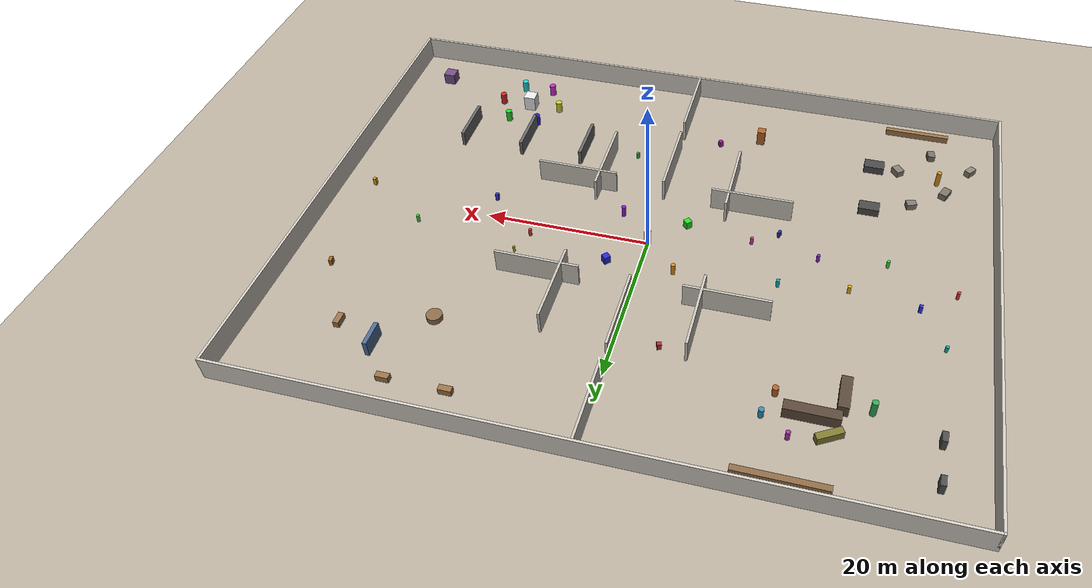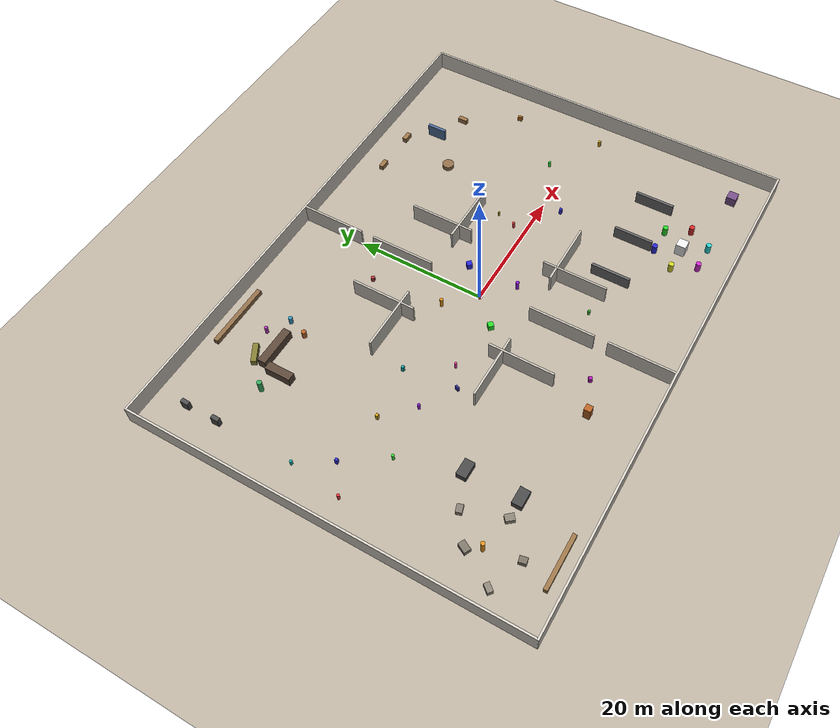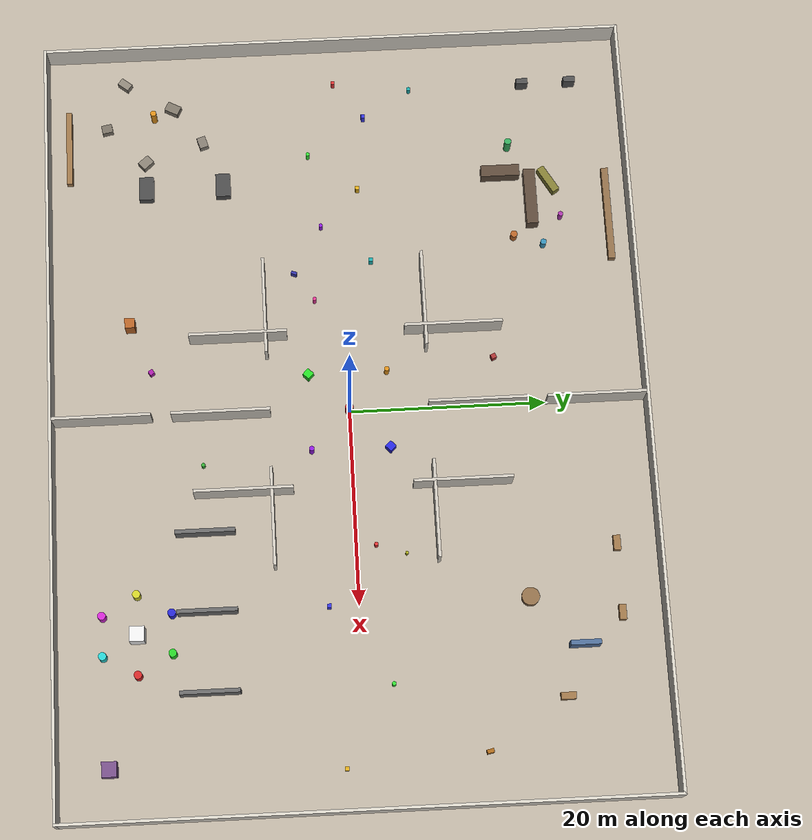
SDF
<sdf version="1.6">
 <world name="building_v2">
  <model name="ground_plane">
   <static>true</static>
   <link name="link">
    <collision name="collision">
     <geometry><plane><normal>0 0 1</normal><size>200 200</size></plane></geometry>
     <surface><friction><ode><mu>1</mu><mu2>1</mu2></ode></friction></surface>
    </collision>
    <visual name="visual">
     <geometry><plane><normal>0 0 1</normal><size>200 200</size></plane></geometry>
     <material><ambient>0.72 0.68 0.62 1</ambient><diffuse>0.72 0.68 0.62 1</diffuse></material>
    </visual>
   </link>
  </model>
  <model name="wall_north">
   <static>true</static>
   <pose>0 30.15 1.5 0 0 0</pose>
   <link name="l">
    <collision name="c"><geometry><box><size>80.6 0.3 3</size></box></geometry></collision>
    <visual name="v">
     <geometry><box><size>80.6 0.3 3</size></box></geometry>
     <material><ambient>0.82 0.80 0.76 1</ambient><diffuse>0.82 0.80 0.76 1</diffuse></material>
    </visual>
   </link>
  </model>
  <model name="wall_south">
   <static>true</static>
   <pose>0 -30.15 1.5 0 0 0</pose>
   <link name="l">
    <collision name="c"><geometry><box><size>80.6 0.3 3</size></box></geometry></collision>
    <visual name="v">
     <geometry><box><size>80.6 0.3 3</size></box></geometry>
     <material><ambient>0.82 0.80 0.76 1</ambient><diffuse>0.82 0.80 0.76 1</diffuse></material>
    </visual>
   </link>
  </model>
  <model name="wall_west">
   <static>true</static>
   <pose>-40.15 0 1.5 0 0 0</pose>
   <link name="l">
    <collision name="c"><geometry><box><size>0.3 60.6 3</size></box></geometry></collision>
    <visual name="v">
     <geometry><box><size>0.3 60.6 3</size></box></geometry>
     <material><ambient>0.82 0.80 0.76 1</ambient><diffuse>0.82 0.80 0.76 1</diffuse></material>
    </visual>
   </link>
  </model>
  <model name="wall_east">
   <static>true</static>
   <pose>40.15 0 1.5 0 0 0</pose>
   <link name="l">
    <collision name="c"><geometry><box><size>0.3 60.6 3</size></box></geometry></collision>
    <visual name="v">
     <geometry><box><size>0.3 60.6 3</size></box></geometry>
     <material><ambient>0.82 0.80 0.76 1</ambient><diffuse>0.82 0.80 0.76 1</diffuse></material>
    </visual>
   </link>
  </model>
  <model name="hub_N_west">
   <static>true</static>
   <pose>-11 8.15 1.5 0 0 0</pose>
   <link name="l">
    <collision name="c"><geometry><box><size>10 0.3 3</size></box></geometry></collision>
    <visual name="v">
     <geometry><box><size>10 0.3 3</size></box></geometry>
     <material><ambient>0.78 0.76 0.72 1</ambient><diffuse>0.78 0.76 0.72 1</diffuse></material>
    </visual>
   </link>
  </model>
  <model name="hub_N_east">
   <static>true</static>
   <pose>11 8.15 1.5 0 0 0</pose>
   <link name="l">
    <collision name="c"><geometry><box><size>10 0.3 3</size></box></geometry></collision>
    <visual name="v">
     <geometry><box><size>10 0.3 3</size></box></geometry>
     <material><ambient>0.78 0.76 0.72 1</ambient><diffuse>0.78 0.76 0.72 1</diffuse></material>
    </visual>
   </link>
  </model>
  <model name="hub_S_west">
   <static>true</static>
   <pose>-11 -8.15 1.5 0 0 0</pose>
   <link name="l">
    <collision name="c"><geometry><box><size>10 0.3 3</size></box></geometry></collision>
    <visual name="v">
     <geometry><box><size>10 0.3 3</size></box></geometry>
     <material><ambient>0.78 0.76 0.72 1</ambient><diffuse>0.78 0.76 0.72 1</diffuse></material>
    </visual>
   </link>
  </model>
  <model name="hub_S_east">
   <static>true</static>
   <pose>11 -8.15 1.5 0 0 0</pose>
   <link name="l">
    <collision name="c"><geometry><box><size>10 0.3 3</size></box></geometry></collision>
    <visual name="v">
     <geometry><box><size>10 0.3 3</size></box></geometry>
     <material><ambient>0.78 0.76 0.72 1</ambient><diffuse>0.78 0.76 0.72 1</diffuse></material>
    </visual>
   </link>
  </model>
  <model name="hub_W_north">
   <static>true</static>
   <pose>-8.15 11 1.5 0 0 0</pose>
   <link name="l">
    <collision name="c"><geometry><box><size>0.3 10 3</size></box></geometry></collision>
    <visual name="v">
     <geometry><box><size>0.3 10 3</size></box></geometry>
     <material><ambient>0.78 0.76 0.72 1</ambient><diffuse>0.78 0.76 0.72 1</diffuse></material>
    </visual>
   </link>
  </model>
  <model name="hub_W_south">
   <static>true</static>
   <pose>-8.15 -11 1.5 0 0 0</pose>
   <link name="l">
    <collision name="c"><geometry><box><size>0.3 10 3</size></box></geometry></collision>
    <visual name="v">
     <geometry><box><size>0.3 10 3</size></box></geometry>
     <material><ambient>0.78 0.76 0.72 1</ambient><diffuse>0.78 0.76 0.72 1</diffuse></material>
    </visual>
   </link>
  </model>
  <model name="hub_E_north">
   <static>true</static>
   <pose>8.15 11 1.5 0 0 0</pose>
   <link name="l">
    <collision name="c"><geometry><box><size>0.3 10 3</size></box></geometry></collision>
    <visual name="v">
     <geometry><box><size>0.3 10 3</size></box></geometry>
     <material><ambient>0.78 0.76 0.72 1</ambient><diffuse>0.78 0.76 0.72 1</diffuse></material>
    </visual>
   </link>
  </model>
  <model name="hub_E_south">
   <static>true</static>
   <pose>8.15 -11 1.5 0 0 0</pose>
   <link name="l">
    <collision name="c"><geometry><box><size>0.3 10 3</size></box></geometry></collision>
    <visual name="v">
     <geometry><box><size>0.3 10 3</size></box></geometry>
     <material><ambient>0.78 0.76 0.72 1</ambient><diffuse>0.78 0.76 0.72 1</diffuse></material>
    </visual>
   </link>
  </model>
  <model name="hub_centre_cylinder">
   <static>true</static>
   <pose>0 0 1.0 0 0 0</pose>
   <link name="l">
    <collision name="c">
     <geometry><cylinder><radius>0.4</radius><length>2.0</length></cylinder></geometry>
    </collision>
    <visual name="v">
     <geometry><cylinder><radius>0.4</radius><length>2.0</length></cylinder></geometry>
     <material><ambient>0.85 0.15 0.15 1</ambient><diffuse>0.85 0.15 0.15 1</diffuse></material>
    </visual>
   </link>
  </model>
  <model name="hub_box_NE">
   <static>true</static>
   <pose>4 4 0.5 0 0 0.785</pose>
   <link name="l">
    <collision name="c"><geometry><box><size>0.8 0.8 1.0</size></box></geometry></collision>
    <visual name="v">
     <geometry><box><size>0.8 0.8 1.0</size></box></geometry>
     <material><ambient>0.15 0.15 0.85 1</ambient><diffuse>0.15 0.15 0.85 1</diffuse></material>
    </visual>
   </link>
  </model>
  <model name="hub_box_SW">
   <static>true</static>
   <pose>-4 -4 0.5 0 0 0.785</pose>
   <link name="l">
    <collision name="c"><geometry><box><size>0.8 0.8 1.0</size></box></geometry></collision>
    <visual name="v">
     <geometry><box><size>0.8 0.8 1.0</size></box></geometry>
     <material><ambient>0.15 0.85 0.15 1</ambient><diffuse>0.15 0.85 0.15 1</diffuse></material>
    </visual>
   </link>
  </model>
  <model name="hub_cyl_NW">
   <static>true</static>
   <pose>-4 4 0.75 0 0 0</pose>
   <link name="l">
    <collision name="c">
     <geometry><cylinder><radius>0.25</radius><length>1.5</length></cylinder></geometry>
    </collision>
    <visual name="v">
     <geometry><cylinder><radius>0.25</radius><length>1.5</length></cylinder></geometry>
     <material><ambient>0.85 0.55 0.10 1</ambient><diffuse>0.85 0.55 0.10 1</diffuse></material>
    </visual>
   </link>
  </model>
  <model name="hub_cyl_SE">
   <static>true</static>
   <pose>4 -4 0.75 0 0 0</pose>
   <link name="l">
    <collision name="c">
     <geometry><cylinder><radius>0.25</radius><length>1.5</length></cylinder></geometry>
    </collision>
    <visual name="v">
     <geometry><cylinder><radius>0.25</radius><length>1.5</length></cylinder></geometry>
     <material><ambient>0.55 0.10 0.85 1</ambient><diffuse>0.55 0.10 0.85 1</diffuse></material>
    </visual>
   </link>
  </model>
  <model name="north_divider_lower">
   <static>true</static>
   <pose>0 13 1.5 0 0 0</pose>
   <link name="l">
    <collision name="c"><geometry><box><size>0.3 10 3</size></box></geometry></collision>
    <visual name="v">
     <geometry><box><size>0.3 10 3</size></box></geometry>
     <material><ambient>0.78 0.76 0.72 1</ambient><diffuse>0.78 0.76 0.72 1</diffuse></material>
    </visual>
   </link>
  </model>
  <model name="north_divider_upper">
   <static>true</static>
   <pose>0 25 1.5 0 0 0</pose>
   <link name="l">
    <collision name="c"><geometry><box><size>0.3 10 3</size></box></geometry></collision>
    <visual name="v">
     <geometry><box><size>0.3 10 3</size></box></geometry>
     <material><ambient>0.78 0.76 0.72 1</ambient><diffuse>0.78 0.76 0.72 1</diffuse></material>
    </visual>
   </link>
  </model>
  <model name="office_landmark_tall">
   <static>true</static>
   <pose>25 22 1.0 0 0 0</pose>
   <link name="l">
    <collision name="c"><geometry><box><size>0.5 3 2.0</size></box></geometry></collision>
    <visual name="v">
     <geometry><box><size>0.5 3 2.0</size></box></geometry>
     <material><ambient>0.30 0.42 0.58 1</ambient><diffuse>0.30 0.42 0.58 1</diffuse></material>
    </visual>
   </link>
  </model>
  <model name="office_desk1">
   <static>true</static>
   <pose>15 26 0.4 0 0 0</pose>
   <link name="l">
    <collision name="c"><geometry><box><size>1.5 0.7 0.8</size></box></geometry></collision>
    <visual name="v">
     <geometry><box><size>1.5 0.7 0.8</size></box></geometry>
     <material><ambient>0.60 0.45 0.28 1</ambient><diffuse>0.60 0.45 0.28 1</diffuse></material>
    </visual>
   </link>
  </model>
  <model name="office_desk2">
   <static>true</static>
   <pose>22 26 0.4 0 0 0</pose>
   <link name="l">
    <collision name="c"><geometry><box><size>1.5 0.7 0.8</size></box></geometry></collision>
    <visual name="v">
     <geometry><box><size>1.5 0.7 0.8</size></box></geometry>
     <material><ambient>0.60 0.45 0.28 1</ambient><diffuse>0.60 0.45 0.28 1</diffuse></material>
    </visual>
   </link>
  </model>
  <model name="office_desk3">
   <static>true</static>
   <pose>30 20 0.4 0 0 1.5707</pose>
   <link name="l">
    <collision name="c"><geometry><box><size>1.5 0.7 0.8</size></box></geometry></collision>
    <visual name="v">
     <geometry><box><size>1.5 0.7 0.8</size></box></geometry>
     <material><ambient>0.60 0.45 0.28 1</ambient><diffuse>0.60 0.45 0.28 1</diffuse></material>
    </visual>
   </link>
  </model>
  <model name="office_round_table">
   <static>true</static>
   <pose>20 17 0.4 0 0 0</pose>
   <link name="l">
    <collision name="c">
     <geometry><cylinder><radius>0.9</radius><length>0.75</length></cylinder></geometry>
    </collision>
    <visual name="v">
     <geometry><cylinder><radius>0.9</radius><length>0.75</length></cylinder></geometry>
     <material><ambient>0.55 0.42 0.28 1</ambient><diffuse>0.55 0.42 0.28 1</diffuse></material>
    </visual>
   </link>
  </model>
  <model name="lab_bench_long">
   <static>true</static>
   <pose>-20 28 0.4 0 0 0</pose>
   <link name="l">
    <collision name="c"><geometry><box><size>10 0.7 0.8</size></box></geometry></collision>
    <visual name="v">
     <geometry><box><size>10 0.7 0.8</size></box></geometry>
     <material><ambient>0.55 0.42 0.28 1</ambient><diffuse>0.55 0.42 0.28 1</diffuse></material>
    </visual>
   </link>
  </model>
  <model name="lab_cylinder_green">
   <static>true</static>
   <pose>-28 18 1.0 0 0 0</pose>
   <link name="l">
    <collision name="c">
     <geometry><cylinder><radius>0.35</radius><length>2.0</length></cylinder></geometry>
    </collision>
    <visual name="v">
     <geometry><cylinder><radius>0.35</radius><length>2.0</length></cylinder></geometry>
     <material><ambient>0.20 0.65 0.35 1</ambient><diffuse>0.20 0.65 0.35 1</diffuse></material>
    </visual>
   </link>
  </model>
  <model name="lab_rack1">
   <static>true</static>
   <pose>-35 25 0.75 0 0 0</pose>
   <link name="l">
    <collision name="c"><geometry><box><size>0.6 1.2 1.5</size></box></geometry></collision>
    <visual name="v">
     <geometry><box><size>0.6 1.2 1.5</size></box></geometry>
     <material><ambient>0.30 0.30 0.30 1</ambient><diffuse>0.30 0.30 0.30 1</diffuse></material>
    </visual>
   </link>
  </model>
  <model name="lab_rack2">
   <static>true</static>
   <pose>-35 20 0.75 0 0 0</pose>
   <link name="l">
    <collision name="c"><geometry><box><size>0.6 1.2 1.5</size></box></geometry></collision>
    <visual name="v">
     <geometry><box><size>0.6 1.2 1.5</size></box></geometry>
     <material><ambient>0.30 0.30 0.30 1</ambient><diffuse>0.30 0.30 0.30 1</diffuse></material>
    </visual>
   </link>
  </model>
  <model name="south_divider_lower">
   <static>true</static>
   <pose>0 -25 1.5 0 0 0</pose>
   <link name="l">
    <collision name="c"><geometry><box><size>0.3 10 3</size></box></geometry></collision>
    <visual name="v">
     <geometry><box><size>0.3 10 3</size></box></geometry>
     <material><ambient>0.78 0.76 0.72 1</ambient><diffuse>0.78 0.76 0.72 1</diffuse></material>
    </visual>
   </link>
  </model>
  <model name="south_divider_upper">
   <static>true</static>
   <pose>0 -13 1.5 0 0 0</pose>
   <link name="l">
    <collision name="c"><geometry><box><size>0.3 10 3</size></box></geometry></collision>
    <visual name="v">
     <geometry><box><size>0.3 10 3</size></box></geometry>
     <material><ambient>0.78 0.76 0.72 1</ambient><diffuse>0.78 0.76 0.72 1</diffuse></material>
    </visual>
   </link>
  </model>
  <model name="ws_machine1">
   <static>true</static>
   <pose>-25 -12 0.5 0 0 0</pose>
   <link name="l">
    <collision name="c"><geometry><box><size>2.5 1.5 1.0</size></box></geometry></collision>
    <visual name="v">
     <geometry><box><size>2.5 1.5 1.0</size></box></geometry>
     <material><ambient>0.28 0.28 0.28 1</ambient><diffuse>0.28 0.28 0.28 1</diffuse></material>
    </visual>
   </link>
  </model>
  <model name="ws_machine2">
   <static>true</static>
   <pose>-25 -20 0.5 0 0 0</pose>
   <link name="l">
    <collision name="c"><geometry><box><size>2.5 1.5 1.0</size></box></geometry></collision>
    <visual name="v">
     <geometry><box><size>2.5 1.5 1.0</size></box></geometry>
     <material><ambient>0.28 0.28 0.28 1</ambient><diffuse>0.28 0.28 0.28 1</diffuse></material>
    </visual>
   </link>
  </model>
  <model name="ws_landmark">
   <static>true</static>
   <pose>-10 -22 1.0 0 0 0</pose>
   <link name="l">
    <collision name="c"><geometry><box><size>1.0 1.0 2.0</size></box></geometry></collision>
    <visual name="v">
     <geometry><box><size>1.0 1.0 2.0</size></box></geometry>
     <material><ambient>0.70 0.38 0.15 1</ambient><diffuse>0.70 0.38 0.15 1</diffuse></material>
    </visual>
   </link>
  </model>
  <model name="ws_bench">
   <static>true</static>
   <pose>-30 -28 0.4 0 0 0</pose>
   <link name="l">
    <collision name="c"><geometry><box><size>8 0.6 0.8</size></box></geometry></collision>
    <visual name="v">
     <geometry><box><size>8 0.6 0.8</size></box></geometry>
     <material><ambient>0.60 0.45 0.28 1</ambient><diffuse>0.60 0.45 0.28 1</diffuse></material>
    </visual>
   </link>
  </model>
  <model name="store_shelf1">
   <static>true</static>
   <pose>12 -15 1.0 0 0 0</pose>
   <link name="l">
    <collision name="c"><geometry><box><size>0.4 6 2.0</size></box></geometry></collision>
    <visual name="v">
     <geometry><box><size>0.4 6 2.0</size></box></geometry>
     <material><ambient>0.40 0.40 0.40 1</ambient><diffuse>0.40 0.40 0.40 1</diffuse></material>
    </visual>
   </link>
  </model>
  <model name="store_shelf2">
   <static>true</static>
   <pose>20 -15 1.0 0 0 0</pose>
   <link name="l">
    <collision name="c"><geometry><box><size>0.4 6 2.0</size></box></geometry></collision>
    <visual name="v">
     <geometry><box><size>0.4 6 2.0</size></box></geometry>
     <material><ambient>0.40 0.40 0.40 1</ambient><diffuse>0.40 0.40 0.40 1</diffuse></material>
    </visual>
   </link>
  </model>
  <model name="store_shelf3">
   <static>true</static>
   <pose>28 -15 1.0 0 0 0</pose>
   <link name="l">
    <collision name="c"><geometry><box><size>0.4 6 2.0</size></box></geometry></collision>
    <visual name="v">
     <geometry><box><size>0.4 6 2.0</size></box></geometry>
     <material><ambient>0.40 0.40 0.40 1</ambient><diffuse>0.40 0.40 0.40 1</diffuse></material>
    </visual>
   </link>
  </model>
  <model name="store_landmark">
   <static>true</static>
   <pose>35 -25 0.75 0 0 0</pose>
   <link name="l">
    <collision name="c"><geometry><box><size>1.5 1.5 1.5</size></box></geometry></collision>
    <visual name="v">
     <geometry><box><size>1.5 1.5 1.5</size></box></geometry>
     <material><ambient>0.45 0.30 0.52 1</ambient><diffuse>0.45 0.30 0.52 1</diffuse></material>
    </visual>
   </link>
  </model>
  <model name="corr_W_obj1">
   <static>true</static>
   <pose>-36 0 0.5 0 0 0</pose>
   <link name="l">
    <collision name="c">
     <geometry><cylinder><radius>0.2</radius><length>1.0</length></cylinder></geometry>
    </collision>
    <visual name="v">
     <geometry><cylinder><radius>0.2</radius><length>1.0</length></cylinder></geometry>
     <material><ambient>0.85 0.20 0.20 1</ambient><diffuse>0.85 0.20 0.20 1</diffuse></material>
    </visual>
   </link>
  </model>
  <model name="corr_W_obj2">
   <static>true</static>
   <pose>-32 3 0.5 0 0 0</pose>
   <link name="l">
    <collision name="c"><geometry><box><size>0.4 0.4 1.0</size></box></geometry></collision>
    <visual name="v">
     <geometry><box><size>0.4 0.4 1.0</size></box></geometry>
     <material><ambient>0.20 0.20 0.85 1</ambient><diffuse>0.20 0.20 0.85 1</diffuse></material>
    </visual>
   </link>
  </model>
  <model name="corr_W_obj3">
   <static>true</static>
   <pose>-28 -3 0.5 0 0 0</pose>
   <link name="l">
    <collision name="c">
     <geometry><cylinder><radius>0.2</radius><length>1.0</length></cylinder></geometry>
    </collision>
    <visual name="v">
     <geometry><cylinder><radius>0.2</radius><length>1.0</length></cylinder></geometry>
     <material><ambient>0.20 0.85 0.20 1</ambient><diffuse>0.20 0.85 0.20 1</diffuse></material>
    </visual>
   </link>
  </model>
  <model name="corr_W_obj4">
   <static>true</static>
   <pose>-24 2 0.5 0 0 0</pose>
   <link name="l">
    <collision name="c"><geometry><box><size>0.4 0.4 1.0</size></box></geometry></collision>
    <visual name="v">
     <geometry><box><size>0.4 0.4 1.0</size></box></geometry>
     <material><ambient>0.85 0.65 0.10 1</ambient><diffuse>0.85 0.65 0.10 1</diffuse></material>
    </visual>
   </link>
  </model>
  <model name="corr_W_obj5">
   <static>true</static>
   <pose>-20 -2 0.5 0 0 0</pose>
   <link name="l">
    <collision name="c">
     <geometry><cylinder><radius>0.2</radius><length>1.0</length></cylinder></geometry>
    </collision>
    <visual name="v">
     <geometry><cylinder><radius>0.2</radius><length>1.0</length></cylinder></geometry>
     <material><ambient>0.55 0.10 0.85 1</ambient><diffuse>0.55 0.10 0.85 1</diffuse></material>
    </visual>
   </link>
  </model>
  <model name="corr_W_obj6">
   <static>true</static>
   <pose>-16 3 0.5 0 0 0</pose>
   <link name="l">
    <collision name="c"><geometry><box><size>0.4 0.4 1.0</size></box></geometry></collision>
    <visual name="v">
     <geometry><box><size>0.4 0.4 1.0</size></box></geometry>
     <material><ambient>0.10 0.65 0.65 1</ambient><diffuse>0.10 0.65 0.65 1</diffuse></material>
    </visual>
   </link>
  </model>
  <model name="corr_W_obj7">
   <static>true</static>
   <pose>-12 -3 0.5 0 0 0</pose>
   <link name="l">
    <collision name="c">
     <geometry><cylinder><radius>0.2</radius><length>1.0</length></cylinder></geometry>
    </collision>
    <visual name="v">
     <geometry><cylinder><radius>0.2</radius><length>1.0</length></cylinder></geometry>
     <material><ambient>0.85 0.20 0.55 1</ambient><diffuse>0.85 0.20 0.55 1</diffuse></material>
    </visual>
   </link>
  </model>
  <model name="corr_E_obj1">
   <static>true</static>
   <pose>14 2 0.5 0 0 0</pose>
   <link name="l">
    <collision name="c">
     <geometry><cylinder><radius>0.2</radius><length>1.0</length></cylinder></geometry>
    </collision>
    <visual name="v">
     <geometry><cylinder><radius>0.2</radius><length>1.0</length></cylinder></geometry>
     <material><ambient>0.85 0.20 0.20 1</ambient><diffuse>0.85 0.20 0.20 1</diffuse></material>
    </visual>
   </link>
  </model>
  <model name="corr_E_obj2">
   <static>true</static>
   <pose>20 -3 0.5 0 0 0</pose>
   <link name="l">
    <collision name="c"><geometry><box><size>0.4 0.4 1.0</size></box></geometry></collision>
    <visual name="v">
     <geometry><box><size>0.4 0.4 1.0</size></box></geometry>
     <material><ambient>0.20 0.20 0.85 1</ambient><diffuse>0.20 0.20 0.85 1</diffuse></material>
    </visual>
   </link>
  </model>
  <model name="corr_E_obj3">
   <static>true</static>
   <pose>28 3 0.5 0 0 0</pose>
   <link name="l">
    <collision name="c">
     <geometry><cylinder><radius>0.2</radius><length>1.0</length></cylinder></geometry>
    </collision>
    <visual name="v">
     <geometry><cylinder><radius>0.2</radius><length>1.0</length></cylinder></geometry>
     <material><ambient>0.20 0.85 0.20 1</ambient><diffuse>0.20 0.85 0.20 1</diffuse></material>
    </visual>
   </link>
  </model>
  <model name="corr_E_obj4">
   <static>true</static>
   <pose>36 -2 0.5 0 0 0</pose>
   <link name="l">
    <collision name="c"><geometry><box><size>0.4 0.4 1.0</size></box></geometry></collision>
    <visual name="v">
     <geometry><box><size>0.4 0.4 1.0</size></box></geometry>
     <material><ambient>0.85 0.65 0.10 1</ambient><diffuse>0.85 0.65 0.10 1</diffuse></material>
    </visual>
   </link>
  </model>
  <model name="island1_arm1">
   <static>true</static>
   <pose>-22 20 0.75 0 0 0</pose>
   <link name="l">
    <collision name="c"><geometry><box><size>6 1.2 1.5</size></box></geometry></collision>
    <visual name="v">
     <geometry><box><size>6 1.2 1.5</size></box></geometry>
     <material><ambient>0.35 0.28 0.22 1</ambient><diffuse>0.35 0.28 0.22 1</diffuse></material>
    </visual>
   </link>
  </model>
  <model name="island1_arm2">
   <static>true</static>
   <pose>-25 17 0.75 0 0 0</pose>
   <link name="l">
    <collision name="c"><geometry><box><size>1.2 4 1.5</size></box></geometry></collision>
    <visual name="v">
     <geometry><box><size>1.2 4 1.5</size></box></geometry>
     <material><ambient>0.35 0.28 0.22 1</ambient><diffuse>0.35 0.28 0.22 1</diffuse></material>
    </visual>
   </link>
  </model>
  <model name="island1_cyl1">
   <static>true</static>
   <pose>-18 18 0.6 0 0 0</pose>
   <link name="l">
    <collision name="c">
     <geometry><cylinder><radius>0.35</radius><length>1.2</length></cylinder></geometry>
    </collision>
    <visual name="v">
     <geometry><cylinder><radius>0.35</radius><length>1.2</length></cylinder></geometry>
     <material><ambient>0.70 0.38 0.15 1</ambient><diffuse>0.70 0.38 0.15 1</diffuse></material>
    </visual>
   </link>
  </model>
  <model name="island1_cyl2">
   <static>true</static>
   <pose>-17 21 0.6 0 0 0</pose>
   <link name="l">
    <collision name="c">
     <geometry><cylinder><radius>0.3</radius><length>1.2</length></cylinder></geometry>
    </collision>
    <visual name="v">
     <geometry><cylinder><radius>0.3</radius><length>1.2</length></cylinder></geometry>
     <material><ambient>0.20 0.55 0.70 1</ambient><diffuse>0.20 0.55 0.70 1</diffuse></material>
    </visual>
   </link>
  </model>
  <model name="island1_cyl3">
   <static>true</static>
   <pose>-20 23 0.6 0 0 0</pose>
   <link name="l">
    <collision name="c">
     <geometry><cylinder><radius>0.25</radius><length>1.2</length></cylinder></geometry>
    </collision>
    <visual name="v">
     <geometry><cylinder><radius>0.25</radius><length>1.2</length></cylinder></geometry>
     <material><ambient>0.65 0.20 0.65 1</ambient><diffuse>0.65 0.20 0.65 1</diffuse></material>
    </visual>
   </link>
  </model>
  <model name="island1_diag">
   <static>true</static>
   <pose>-24 22 0.5 0 0 0.5236</pose>
   <link name="l">
    <collision name="c"><geometry><box><size>3 0.8 1.0</size></box></geometry></collision>
    <visual name="v">
     <geometry><box><size>3 0.8 1.0</size></box></geometry>
     <material><ambient>0.50 0.48 0.20 1</ambient><diffuse>0.50 0.48 0.20 1</diffuse></material>
    </visual>
   </link>
  </model>
  <model name="island2_p1">
   <static>true</static>
   <pose>26 -22 0.75 0 0 0</pose>
   <link name="l">
    <collision name="c">
     <geometry><cylinder><radius>0.4</radius><length>1.5</length></cylinder></geometry>
    </collision>
    <visual name="v">
     <geometry><cylinder><radius>0.4</radius><length>1.5</length></cylinder></geometry>
     <material><ambient>0.80 0.15 0.15 1</ambient><diffuse>0.80 0.15 0.15 1</diffuse></material>
    </visual>
   </link>
  </model>
  <model name="island2_p2">
   <static>true</static>
   <pose>24 -18.54 0.75 0 0 0</pose>
   <link name="l">
    <collision name="c">
     <geometry><cylinder><radius>0.4</radius><length>1.5</length></cylinder></geometry>
    </collision>
    <visual name="v">
     <geometry><cylinder><radius>0.4</radius><length>1.5</length></cylinder></geometry>
     <material><ambient>0.15 0.80 0.15 1</ambient><diffuse>0.15 0.80 0.15 1</diffuse></material>
    </visual>
   </link>
  </model>
  <model name="island2_p3">
   <static>true</static>
   <pose>20 -18.54 0.75 0 0 0</pose>
   <link name="l">
    <collision name="c">
     <geometry><cylinder><radius>0.4</radius><length>1.5</length></cylinder></geometry>
    </collision>
    <visual name="v">
     <geometry><cylinder><radius>0.4</radius><length>1.5</length></cylinder></geometry>
     <material><ambient>0.15 0.15 0.80 1</ambient><diffuse>0.15 0.15 0.80 1</diffuse></material>
    </visual>
   </link>
  </model>
  <model name="island2_p4">
   <static>true</static>
   <pose>18 -22 0.75 0 0 0</pose>
   <link name="l">
    <collision name="c">
     <geometry><cylinder><radius>0.4</radius><length>1.5</length></cylinder></geometry>
    </collision>
    <visual name="v">
     <geometry><cylinder><radius>0.4</radius><length>1.5</length></cylinder></geometry>
     <material><ambient>0.80 0.80 0.15 1</ambient><diffuse>0.80 0.80 0.15 1</diffuse></material>
    </visual>
   </link>
  </model>
  <model name="island2_p5">
   <static>true</static>
   <pose>20 -25.46 0.75 0 0 0</pose>
   <link name="l">
    <collision name="c">
     <geometry><cylinder><radius>0.4</radius><length>1.5</length></cylinder></geometry>
    </collision>
    <visual name="v">
     <geometry><cylinder><radius>0.4</radius><length>1.5</length></cylinder></geometry>
     <material><ambient>0.80 0.15 0.80 1</ambient><diffuse>0.80 0.15 0.80 1</diffuse></material>
    </visual>
   </link>
  </model>
  <model name="island2_p6">
   <static>true</static>
   <pose>24 -25.46 0.75 0 0 0</pose>
   <link name="l">
    <collision name="c">
     <geometry><cylinder><radius>0.4</radius><length>1.5</length></cylinder></geometry>
    </collision>
    <visual name="v">
     <geometry><cylinder><radius>0.4</radius><length>1.5</length></cylinder></geometry>
     <material><ambient>0.15 0.80 0.80 1</ambient><diffuse>0.15 0.80 0.80 1</diffuse></material>
    </visual>
   </link>
  </model>
  <model name="island2_centre">
   <static>true</static>
   <pose>22 -22 1.0 0 0 0</pose>
   <link name="l">
    <collision name="c"><geometry><box><size>1.5 1.5 2.0</size></box></geometry></collision>
    <visual name="v">
     <geometry><box><size>1.5 1.5 2.0</size></box></geometry>
     <material><ambient>0.90 0.90 0.90 1</ambient><diffuse>0.90 0.90 0.90 1</diffuse></material>
    </visual>
   </link>
  </model>
  <model name="boulder1">
   <static>true</static>
   <pose>-30 -14 0.4 0 0 0.3</pose>
   <link name="l">
    <collision name="c"><geometry><box><size>1.2 0.9 0.8</size></box></geometry></collision>
    <visual name="v">
     <geometry><box><size>1.2 0.9 0.8</size></box></geometry>
     <material><ambient>0.50 0.47 0.43 1</ambient><diffuse>0.50 0.47 0.43 1</diffuse></material>
    </visual>
   </link>
  </model>
  <model name="boulder2">
   <static>true</static>
   <pose>-34 -17 0.4 0 0 1.1</pose>
   <link name="l">
    <collision name="c"><geometry><box><size>1.5 1.0 0.8</size></box></geometry></collision>
    <visual name="v">
     <geometry><box><size>1.5 1.0 0.8</size></box></geometry>
     <material><ambient>0.48 0.45 0.40 1</ambient><diffuse>0.48 0.45 0.40 1</diffuse></material>
    </visual>
   </link>
  </model>
  <model name="boulder3">
   <static>true</static>
   <pose>-28 -20 0.4 0 0 0.7</pose>
   <link name="l">
    <collision name="c"><geometry><box><size>1.0 1.3 0.8</size></box></geometry></collision>
    <visual name="v">
     <geometry><box><size>1.0 1.3 0.8</size></box></geometry>
     <material><ambient>0.52 0.49 0.44 1</ambient><diffuse>0.52 0.49 0.44 1</diffuse></material>
    </visual>
   </link>
  </model>
  <model name="boulder4">
   <static>true</static>
   <pose>-32 -24 0.4 0 0 0.2</pose>
   <link name="l">
    <collision name="c"><geometry><box><size>0.9 1.1 0.8</size></box></geometry></collision>
    <visual name="v">
     <geometry><box><size>0.9 1.1 0.8</size></box></geometry>
     <material><ambient>0.46 0.43 0.38 1</ambient><diffuse>0.46 0.43 0.38 1</diffuse></material>
    </visual>
   </link>
  </model>
  <model name="boulder5">
   <static>true</static>
   <pose>-37 -22 0.4 0 0 0.9</pose>
   <link name="l">
    <collision name="c"><geometry><box><size>1.3 0.8 0.8</size></box></geometry></collision>
    <visual name="v">
     <geometry><box><size>1.3 0.8 0.8</size></box></geometry>
     <material><ambient>0.54 0.51 0.46 1</ambient><diffuse>0.54 0.51 0.46 1</diffuse></material>
    </visual>
   </link>
  </model>
  <model name="boulder_marker">
   <static>true</static>
   <pose>-33 -19 1.0 0 0 0</pose>
   <link name="l">
    <collision name="c">
     <geometry><cylinder><radius>0.3</radius><length>2.0</length></cylinder></geometry>
    </collision>
    <visual name="v">
     <geometry><cylinder><radius>0.3</radius><length>2.0</length></cylinder></geometry>
     <material><ambient>0.85 0.55 0.10 1</ambient><diffuse>0.85 0.55 0.10 1</diffuse></material>
    </visual>
   </link>
  </model>
  <model name="scatter1">
   <static>true</static>
   <pose>-5 15 0.4 0 0 0.4</pose>
   <link name="l">
    <collision name="c"><geometry><box><size>0.5 0.5 0.8</size></box></geometry></collision>
    <visual name="v">
     <geometry><box><size>0.5 0.5 0.8</size></box></geometry>
     <material><ambient>0.65 0.20 0.20 1</ambient><diffuse>0.65 0.20 0.20 1</diffuse></material>
    </visual>
   </link>
  </model>
  <model name="scatter2">
   <static>true</static>
   <pose>5 -15 0.4 0 0 0.8</pose>
   <link name="l">
    <collision name="c">
     <geometry><cylinder><radius>0.2</radius><length>0.8</length></cylinder></geometry>
    </collision>
    <visual name="v">
     <geometry><cylinder><radius>0.2</radius><length>0.8</length></cylinder></geometry>
     <material><ambient>0.20 0.65 0.20 1</ambient><diffuse>0.20 0.65 0.20 1</diffuse></material>
    </visual>
   </link>
  </model>
  <model name="scatter3">
   <static>true</static>
   <pose>-15 -5 0.4 0 0 1.2</pose>
   <link name="l">
    <collision name="c"><geometry><box><size>0.6 0.3 0.8</size></box></geometry></collision>
    <visual name="v">
     <geometry><box><size>0.6 0.3 0.8</size></box></geometry>
     <material><ambient>0.20 0.20 0.65 1</ambient><diffuse>0.20 0.20 0.65 1</diffuse></material>
    </visual>
   </link>
  </model>
  <model name="scatter4">
   <static>true</static>
   <pose>15 5 0.4 0 0 0.3</pose>
   <link name="l">
    <collision name="c">
     <geometry><cylinder><radius>0.15</radius><length>0.8</length></cylinder></geometry>
    </collision>
    <visual name="v">
     <geometry><cylinder><radius>0.15</radius><length>0.8</length></cylinder></geometry>
     <material><ambient>0.65 0.65 0.10 1</ambient><diffuse>0.65 0.65 0.10 1</diffuse></material>
    </visual>
   </link>
  </model>
  <model name="scatter5">
   <static>true</static>
   <pose>-5 -20 0.4 0 0 0.6</pose>
   <link name="l">
    <collision name="c"><geometry><box><size>0.5 0.5 0.8</size></box></geometry></collision>
    <visual name="v">
     <geometry><box><size>0.5 0.5 0.8</size></box></geometry>
     <material><ambient>0.65 0.10 0.65 1</ambient><diffuse>0.65 0.10 0.65 1</diffuse></material>
    </visual>
   </link>
  </model>
  <model name="scatter6">
   <static>true</static>
   <pose>-35 8 0.4 0 0 0.9</pose>
   <link name="l">
    <collision name="c">
     <geometry><cylinder><radius>0.2</radius><length>0.8</length></cylinder></geometry>
    </collision>
    <visual name="v">
     <geometry><cylinder><radius>0.2</radius><length>0.8</length></cylinder></geometry>
     <material><ambient>0.10 0.65 0.65 1</ambient><diffuse>0.10 0.65 0.65 1</diffuse></material>
    </visual>
   </link>
  </model>
  <model name="scatter7">
   <static>true</static>
   <pose>35 12 0.4 0 0 0.2</pose>
   <link name="l">
    <collision name="c"><geometry><box><size>0.4 0.7 0.8</size></box></geometry></collision>
    <visual name="v">
     <geometry><box><size>0.4 0.7 0.8</size></box></geometry>
     <material><ambient>0.65 0.40 0.10 1</ambient><diffuse>0.65 0.40 0.10 1</diffuse></material>
    </visual>
   </link>
  </model>
 </world>
</sdf>
